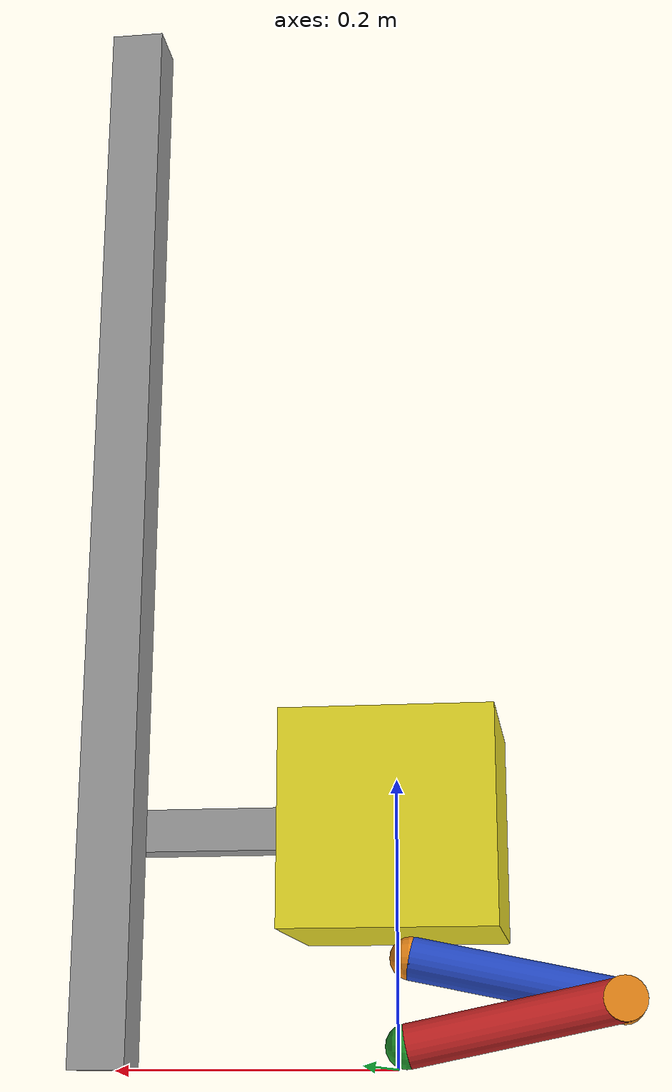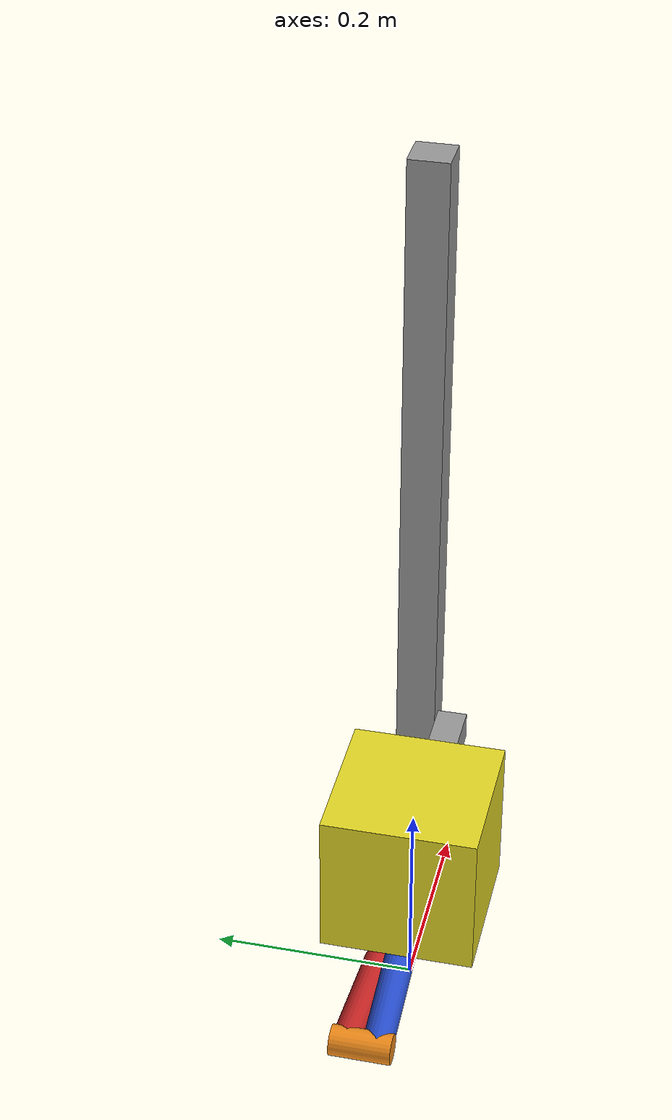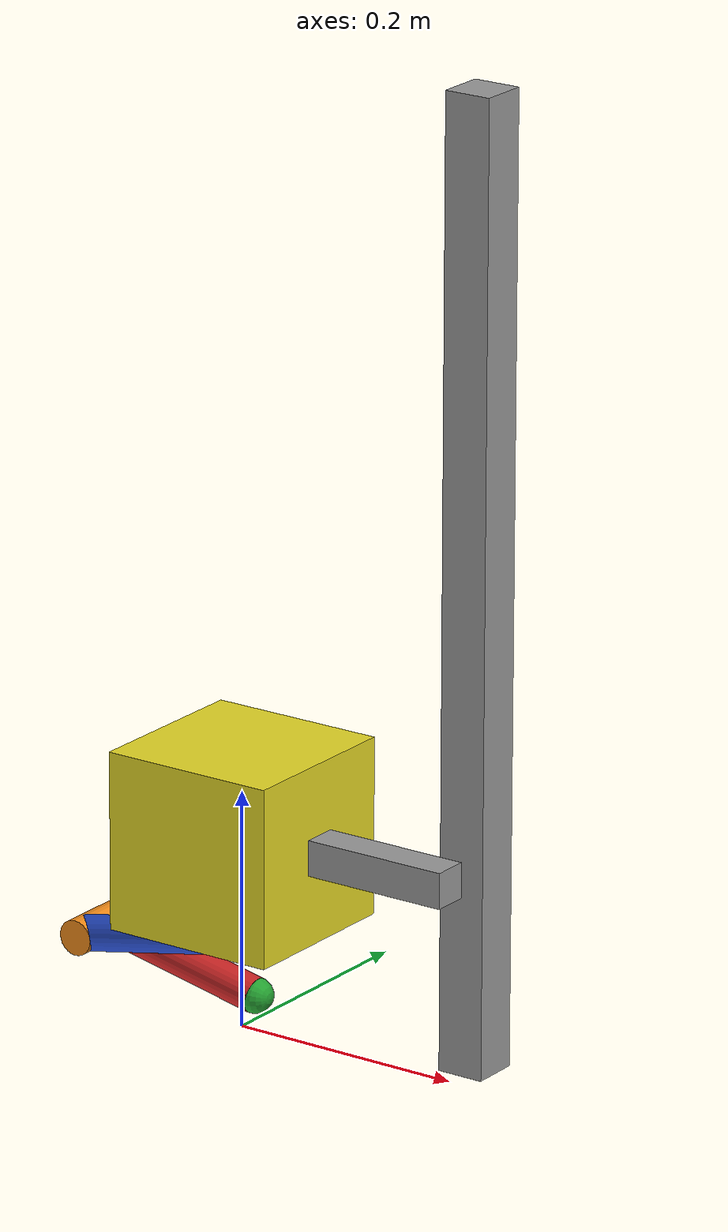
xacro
<?xml version="1.0"?>
<!--full-->
<robot name="my_robot" xmlns:xacro="http://ros.org/wiki/xacro">

  <xacro:property name="pi" value="3.1415926535897931" />

  <link name="world"/>

  <joint name="base_joint" type="fixed">
    <parent link="world"/>
    <child link="base_link"/>
  </joint>

  <link name="base_link">
    <inertial>
      <mass value="10"/>
      <origin xyz="0.2 0.035 0.4" rpy="0 0 0"/>
      <inertia ixx="1.0" ixy="0.0" ixz="0.0" iyy="1.0" iyz="0.0" izz="1.0"/>
    </inertial>
    <visual>
      <origin xyz="0.2 0.035 0.4" rpy="0 0 0"/>
      <geometry>
        <box size="0.04 0.04 0.8"/>
      </geometry>
    </visual>
    <collision>
      <origin xyz="0.2 0.035 0.4" rpy="0 0 0"/>
      <geometry>
        <box size="0.04 0.04 0.8"/>
      </geometry>
    </collision>
  </link>
  <gazebo reference="base_link">
    <selfCollide>true</selfCollide>
    <material>Gazebo/Gray</material>
  </gazebo>

  <joint name="guide_joint" type="prismatic">
    <parent link="base_link"/>
    <child link="guide_link"/>
    <limit upper="0.8" lower="0.0" effort="1000" velocity="100"/>
    <origin xyz="0.2 0 0.16481" rpy="0 ${-90*pi/180} 0"/>
    <dynamics damping="0.1"/>
  </joint>

  <link name="guide_link">
    <inertial>
      <mass value="0.1"/>
      <origin xyz="0 0 0.0625" rpy="0 ${90*pi/180} 0"/>
      <inertia ixx="0.01" ixy="0.0" ixz="0.0" iyy="0.01" iyz="0.0" izz="0.01"/>
    </inertial>
    <visual>
      <origin xyz="0 0 0.0625" rpy="0 ${90*pi/180} 0"/>
      <geometry>
        <box size="0.125 0.03 0.03"/>
      </geometry>
    </visual>
    <collision>
      <origin xyz="0 0 0.0625" rpy="0 ${90*pi/180} 0"/>
      <geometry>
        <box size="0.125 0.03 0.03"/>
      </geometry>
    </collision>
  </link>
  <gazebo reference="guide_link">
    <selfCollide>true</selfCollide>
    <material>Gazebo/Gray</material>
  </gazebo>

  <joint name="hashida_joint" type="fixed">
    <parent link="guide_link"/>
    <child link="hashida_box"/>
  </joint>

  <link name="hashida_box">
    <inertial>
      <mass value="3"/>
      <origin xyz="0 0 0.2" rpy="0 0 0"/>
      <inertia ixx="1.0" ixy="0.0" ixz="0.0" iyy="1.0" iyz="0.0" izz="1.0"/>
    </inertial>
    <visual>
      <origin xyz="0 0 0.2" rpy="0 0 0"/>
      <geometry>
        <box size="0.15 0.15 0.15"/>
      </geometry>
    </visual>
    <collision>
      <origin xyz="0 0 0.2" rpy="0 0 0"/>
      <geometry>
        <box size="0.15 0.15 0.15"/>
      </geometry>
    </collision>
  </link>
  <gazebo reference="hashida_box">
    <selfCollide>true</selfCollide>
    <material>Gazebo/Yellow</material>
  </gazebo>

  <joint name="arm2_joint_link_joint" type="fixed">
    <parent link="hashida_box"/>
    <child link="arm2_joint_link"/>
  </joint>

  <link name="arm2_joint_link">
    <inertial>
      <mass value="1.0"/>
      <origin xyz="-0.09 0 0.208819" rpy="0 0 0"/>
      <inertia ixx="0.01" ixy="0.0" ixz="0.0" iyy="0.01" iyz="0.0" izz="0.01"/>
    </inertial>
    <visual>
      <origin xyz="-0.09 0 0.208819" rpy="0 0 0"/>
      <geometry>
        <sphere radius="0.015"/>
      </geometry>
    </visual>
    <collision>
      <origin xyz="-0.09 0 0.208819" rpy="0 0 0"/>
      <geometry>
        <sphere radius="0.015"/>
      </geometry>
    </collision>
  </link>
  <gazebo reference="arm2_joint_link">
    <material>Gazebo/Orange</material>
  </gazebo>

  <joint name="arm2_joint" type="revolute">
    <parent link="arm2_joint_link"/>
    <child link="arm2_link"/>
    <limit upper="0.0" lower="-0.7" effort="7" velocity="100"/>
    <axis xyz="0 1 0"/>
    <origin xyz="-0.09 0 0.208819" rpy="0 0 0"/>
    <dynamics damping="0.1"/>
  </joint>
  <transmission name="arm2_trans">
    <type>transmission_interface/SimpleTransmission</type>
    <joint name="arm2_joint">
      <hardwareInterface>hardware_interface/EffortJointInterface</hardwareInterface>
    </joint>
    <actuator name="arm2_motor">
       <hardwareInterface>hardware_interface/EffortJointInterface</hardwareInterface>
       <mechanismReduction>1</mechanismReduction>
    </actuator>
  </transmission>
  <gazebo reference="arm2_joint">
    <provideFeedback>true</provideFeedback>
    <turnGravityOff>false</turnGravityOff>
  </gazebo>

  <link name="arm2_link">
    <inertial>
      <mass value="0.08"/>
      <origin xyz="-0.014953 0 0.073494" rpy="0 ${-11.5*pi/180} 0"/>
      <inertia ixx="0.01" ixy="0.0" ixz="0.0" iyy="0.01" iyz="0.0" izz="0.01"/>
    </inertial>
    <visual>
      <origin xyz="-0.014953 0 0.073494" rpy="0 ${-11.5*pi/180} 0"/>
      <geometry>
        <cylinder length="0.15" radius="0.015"/>
      </geometry>
    </visual>
    <collision>
      <origin xyz="-0.014953 0 0.073494" rpy="0 ${-11.5*pi/180} 0"/>
      <geometry>
        <cylinder length="0.15" radius="0.015"/>
      </geometry>
    </collision>
  </link>
  <gazebo reference="arm2_link">
    <material>Gazebo/Blue</material>
  </gazebo>

  <joint name="arm1_joint" type="revolute">
    <parent link="arm2_link"/>
    <child link="arm1_joint_link"/>
    <limit upper="1.4" lower="0.0" effort="14" velocity="100"/>
    <axis xyz="0 1 0"/>
    <origin xyz="-0.029906 0.03 0.146988" rpy="0 0 0"/>
    <dynamics damping="0.1"/>
  </joint>
  <transmission name="arm1_trans">
    <type>transmission_interface/SimpleTransmission</type>
    <joint name="arm1_joint">
      <hardwareInterface>hardware_interface/EffortJointInterface</hardwareInterface>
    </joint>
    <actuator name="arm1_motor">
       <hardwareInterface>hardware_interface/EffortJointInterface</hardwareInterface>
       <mechanismReduction>1</mechanismReduction>
    </actuator>
  </transmission>
  <gazebo reference="arm1_joint">
    <provideFeedback>true</provideFeedback>
    <turnGravityOff>false</turnGravityOff>
  </gazebo>

  <link name="arm1_joint_link">
    <inertial>
      <origin xyz="0 -0.015 0" rpy="${90*pi/180} 0 0"/>
      <mass value="0.1"/>
      <inertia ixx="0.01" ixy="0.0" ixz="0.0" iyy="0.01" iyz="0.0" izz="0.01"/>
    </inertial>
    <visual>
      <origin xyz="0 -0.015 0" rpy="${90*pi/180} 0 0"/>
      <geometry>
        <cylinder length="0.06" radius="0.015"/>
      </geometry>
    </visual>
    <collision>
      <origin xyz="0 -0.015 0" rpy="${90*pi/180} 0 0 "/>
      <geometry>
        <cylinder length="0.06" radius="0.015"/>
      </geometry>
    </collision>
  </link>
  <gazebo reference="arm1_joint_link">
    <material>Gazebo/Orange</material>
  </gazebo>

  <joint name="arm1_joint_link_joint" type="fixed">
    <parent link="arm1_joint_link"/>
    <child link="arm1_link"/>
  </joint>

  <link name="arm1_link">
    <inertial>
      <origin xyz="-0.014953 0 -0.073494" rpy="0 ${11.5*pi/180} 0"/>
      <mass value="0.08"/>
      <inertia ixx="0.01" ixy="0.0" ixz="0.0" iyy="0.01" iyz="0.0" izz="0.01"/>
    </inertial>
    <visual>
      <origin xyz="-0.014953 0 -0.073494" rpy="0 ${11.5*pi/180} 0"/>
      <geometry>
        <cylinder length="0.15" radius="0.015"/>
      </geometry>
    </visual>
    <collision>
      <origin xyz="-0.014953 0 -0.073494" rpy="0 ${11.5*pi/180} 0"/>
      <geometry>
        <cylinder length="0.15" radius="0.015"/>
      </geometry>
    </collision>
  </link>
  <gazebo reference="arm1_link">
    <material>Gazebo/Red</material>
  </gazebo>

   <joint name="arm0_joint" type="fixed">
    <parent link="arm1_link"/>
    <child link="arm0_link"/>
  </joint>

  <link name="arm0_link">
    <inertial>
      <mass value="0.1"/>
      <origin xyz="-0.029906 0 -0.146988" rpy="0 0 0"/>
      <inertia ixx="0.01" ixy="0.0" ixz="0.0" iyy="0.01" iyz="0.0" izz="0.01"/>
    </inertial>
    <visual>
      <origin xyz="-0.029906 0 -0.146988" rpy="0 0 0"/>
      <geometry>
        <sphere radius="0.015"/>
      </geometry>
    </visual>
    <collision>
      <origin xyz="-0.029906 0 -0.146988" rpy="0 0 0"/>
      <geometry>
        <sphere radius="0.015"/>
      </geometry>
    </collision>
  </link>
  <gazebo reference="arm0_link">
    <mu1>1.0</mu1>
    <mu2>1.0</mu2>
    <selfCollide>true</selfCollide>
    <material>Gazebo/Green</material>
  </gazebo>

  <gazebo>
    <plugin name="ft_sensor" filename="libgazebo_ros_ft_sensor.so">
      <updateRate>100.0</updateRate>
      <topicName>arm1_sensor/raw</topicName>
      <jointName>arm1_joint</jointName>
      <gaussianNoise>0.0</gaussianNoise>
    </plugin>
    <plugin name="ft_sensor" filename="libgazebo_ros_ft_sensor.so">
      <updateRate>100.0</updateRate>
      <topicName>arm2_sensor/raw</topicName>
      <jointName>arm2_joint</jointName>
      <gaussianNoise>0.0</gaussianNoise>
    </plugin>
    <plugin name="gazebo_ros_control" filename="libgazebo_ros_control.so">
      <robotNamespace>/my_robot</robotNamespace>
      <robotSimType>gazebo_ros_control/DefaultRobotHWSim</robotSimType>
    </plugin>
  </gazebo>

</robot>
